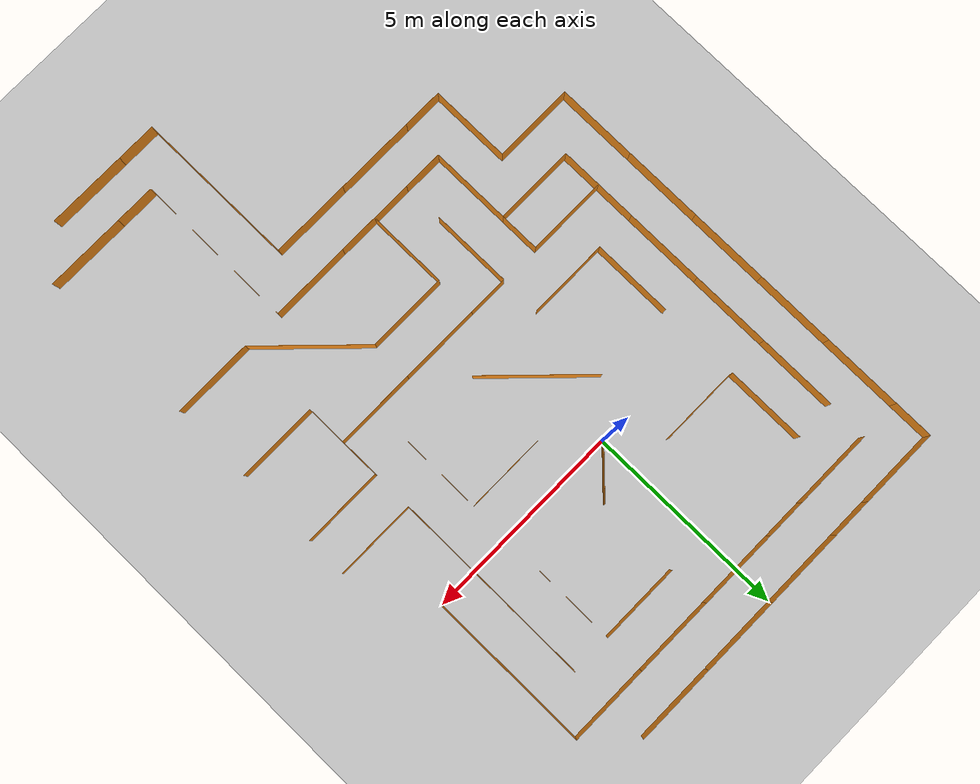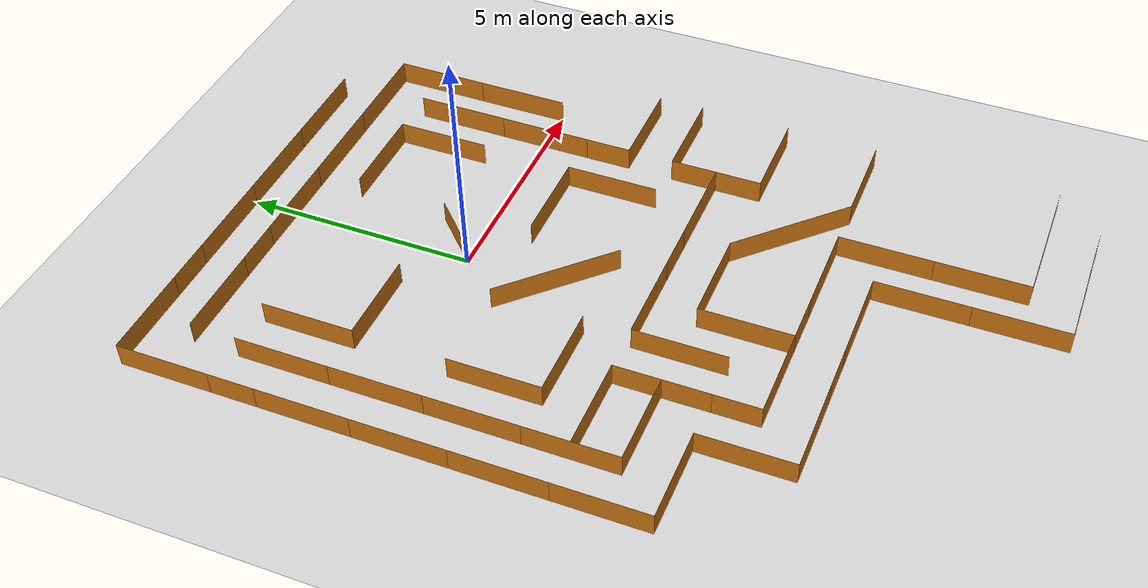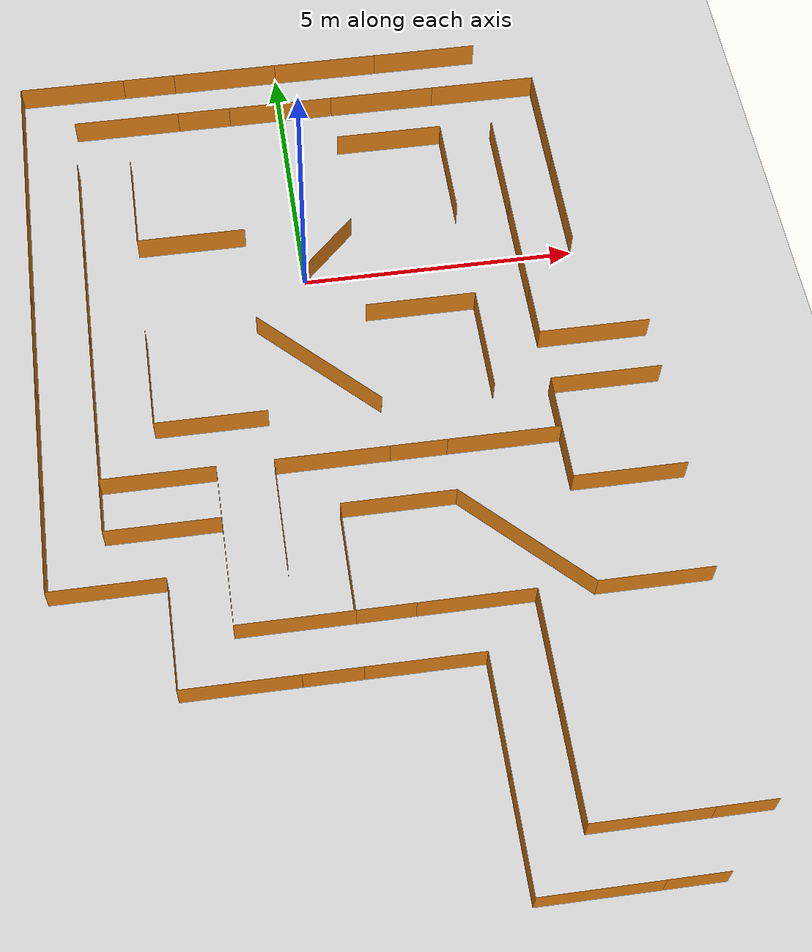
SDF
<sdf version="1.6">
 <world name="default">
  <model name="ground_plane">
   <static>1</static>
   <link name="link">
    <collision name="collision">
     <geometry><plane><normal>0 0 1</normal><size>100 100</size></plane></geometry>
     <surface><friction><ode><mu>100</mu><mu2>50</mu2></ode></friction></surface>
    </collision>
    <visual name="visual">
     <cast_shadows>0</cast_shadows>
     <geometry><plane><normal>0 0 1</normal><size>100 100</size></plane></geometry>
     <material>
      <script><uri>file://media/materials/scripts/gazebo.material</uri><name>Gazebo/Grey</name></script>
     </material>
    </visual>
   </link>
  </model>
  <model name="wall_4">
   <static>1</static>
   <link name="link">
    <collision name="collision"><geometry><box><size>2 0.001 1</size></box></geometry></collision>
    <visual name="visual">
     <geometry><box><size>2 0.001 1</size></box></geometry>
     <material>
      <script><name>Gazebo/Orange</name><uri>file://media/materials/scripts/gazebo.material</uri></script>
     </material>
    </visual>
   </link>
   <pose>-3 -2 0 0 -0 1.5708</pose>
  </model>
  <model name="wall_5">
   <static>1</static>
   <link name="link">
    <collision name="collision"><geometry><box><size>2 0.001 1</size></box></geometry></collision>
    <visual name="visual">
     <geometry><box><size>2 0.001 1</size></box></geometry>
     <material>
      <script><name>Gazebo/Orange</name><uri>file://media/materials/scripts/gazebo.material</uri></script>
     </material>
    </visual>
   </link>
   <pose>-2 -3 0 0 -0 0</pose>
  </model>
  <model name="wall_6">
   <static>1</static>
   <link name="link">
    <collision name="collision"><geometry><box><size>2 0.001 1</size></box></geometry></collision>
    <visual name="visual">
     <geometry><box><size>2 0.001 1</size></box></geometry>
     <material>
      <script><name>Gazebo/Orange</name><uri>file://media/materials/scripts/gazebo.material</uri></script>
     </material>
    </visual>
   </link>
   <pose>3 2 0 0 0 -1.5708</pose>
  </model>
  <model name="wall_7">
   <static>1</static>
   <link name="link">
    <collision name="collision"><geometry><box><size>2 0.001 1</size></box></geometry></collision>
    <visual name="visual">
     <geometry><box><size>2 0.001 1</size></box></geometry>
     <material>
      <script><name>Gazebo/Orange</name><uri>file://media/materials/scripts/gazebo.material</uri></script>
     </material>
    </visual>
   </link>
   <pose>2 3 0 0 0 -3.14159</pose>
  </model>
  <model name="wall_8">
   <static>1</static>
   <link name="link">
    <collision name="collision"><geometry><box><size>2 0.001 1</size></box></geometry></collision>
    <visual name="visual">
     <geometry><box><size>2 0.001 1</size></box></geometry>
     <material>
      <script><name>Gazebo/Orange</name><uri>file://media/materials/scripts/gazebo.material</uri></script>
     </material>
    </visual>
   </link>
   <pose>2 -1 0 0 -0 0</pose>
  </model>
  <model name="wall_9">
   <static>1</static>
   <link name="link">
    <collision name="collision"><geometry><box><size>2 0.001 1</size></box></geometry></collision>
    <visual name="visual">
     <geometry><box><size>2 0.001 1</size></box></geometry>
     <material>
      <script><name>Gazebo/Orange</name><uri>file://media/materials/scripts/gazebo.material</uri></script>
     </material>
    </visual>
   </link>
   <pose>3 -2 0 0 0 -1.5708</pose>
  </model>
  <model name="wall_10">
   <static>1</static>
   <link name="link">
    <collision name="collision"><geometry><box><size>2 0.001 1</size></box></geometry></collision>
    <visual name="visual">
     <geometry><box><size>2 0.001 1</size></box></geometry>
     <material>
      <script><name>Gazebo/Orange</name><uri>file://media/materials/scripts/gazebo.material</uri></script>
     </material>
    </visual>
   </link>
   <pose>-2 1 0 0 0 -3.14159</pose>
  </model>
  <model name="wall_11">
   <static>1</static>
   <link name="link">
    <collision name="collision"><geometry><box><size>2 0.001 1</size></box></geometry></collision>
    <visual name="visual">
     <geometry><box><size>2 0.001 1</size></box></geometry>
     <material>
      <script><name>Gazebo/Orange</name><uri>file://media/materials/scripts/gazebo.material</uri></script>
     </material>
    </visual>
   </link>
   <pose>-3 2 0 0 -0 1.5708</pose>
  </model>
  <model name="wall_12">
   <static>1</static>
   <link name="link">
    <collision name="collision"><geometry><box><size>2.82843 0.001 1</size></box></geometry></collision>
    <visual name="visual">
     <geometry><box><size>2.82843 0.001 1</size></box></geometry>
     <material>
      <script><name>Gazebo/Orange</name><uri>file://media/materials/scripts/gazebo.material</uri></script>
     </material>
    </visual>
   </link>
   <pose>0 -2 0 0 0 -0.785398</pose>
  </model>
  <model name="wall_14">
   <static>1</static>
   <link name="link">
    <collision name="collision"><geometry><box><size>1.41421 0.001 1</size></box></geometry></collision>
    <visual name="visual">
     <geometry><box><size>1.41421 0.001 1</size></box></geometry>
     <material>
      <script><name>Gazebo/Orange</name><uri>file://media/materials/scripts/gazebo.material</uri></script>
     </material>
    </visual>
   </link>
   <pose>0.5 0.5 0 0 -0 0.785398</pose>
  </model>
  <model name="wall_13_clone">
   <static>1</static>
   <link name="link">
    <collision name="collision"><geometry><box><size>2.00836 0.001 1</size></box></geometry></collision>
    <visual name="visual">
     <geometry><box><size>2.00836 0.001 1</size></box></geometry>
     <material>
      <script><name>Gazebo/Orange</name><uri>file://media/materials/scripts/gazebo.material</uri></script>
     </material>
    </visual>
   </link>
   <pose>4 -4 0 0 0 -1.5708</pose>
  </model>
  <model name="wall_13_clone_clone">
   <static>1</static>
   <link name="link">
    <collision name="collision"><geometry><box><size>1.99802 0.001 1</size></box></geometry></collision>
    <visual name="visual">
     <geometry><box><size>1.99802 0.001 1</size></box></geometry>
     <material>
      <script><name>Gazebo/Orange</name><uri>file://media/materials/scripts/gazebo.material</uri></script>
     </material>
    </visual>
   </link>
   <pose>5 -3 0 0 -0 3.14159</pose>
  </model>
  <model name="wall_13_clone_clone_1">
   <static>1</static>
   <link name="link">
    <collision name="collision"><geometry><box><size>2.00836 0.001 1</size></box></geometry></collision>
    <visual name="visual">
     <geometry><box><size>2.00836 0.001 1</size></box></geometry>
     <material>
      <script><name>Gazebo/Orange</name><uri>file://media/materials/scripts/gazebo.material</uri></script>
     </material>
    </visual>
   </link>
   <pose>4.00414 1.99809 0 0 0 -1.5708</pose>
  </model>
  <model name="wall_13_clone_clone_1_clone">
   <static>1</static>
   <link name="link">
    <collision name="collision"><geometry><box><size>2.00836 0.001 1</size></box></geometry></collision>
    <visual name="visual">
     <geometry><box><size>2.00836 0.001 1</size></box></geometry>
     <material>
      <script><name>Gazebo/Orange</name><uri>file://media/materials/scripts/gazebo.material</uri></script>
     </material>
    </visual>
   </link>
   <pose>4 0 0 0 0 -1.5708</pose>
  </model>
  <model name="wall_13_clone_clone_1_clone_0">
   <static>1</static>
   <link name="link">
    <collision name="collision"><geometry><box><size>2.00836 0.001 1</size></box></geometry></collision>
    <visual name="visual">
     <geometry><box><size>2.00836 0.001 1</size></box></geometry>
     <material>
      <script><name>Gazebo/Orange</name><uri>file://media/materials/scripts/gazebo.material</uri></script>
     </material>
    </visual>
   </link>
   <pose>4.00011 -0.995104 0 0 0 -1.5708</pose>
  </model>
  <model name="wall_13_clone_clone_1_clone_1">
   <static>1</static>
   <link name="link">
    <collision name="collision"><geometry><box><size>2.00836 0.001 1</size></box></geometry></collision>
    <visual name="visual">
     <geometry><box><size>2.00836 0.001 1</size></box></geometry>
     <material>
      <script><name>Gazebo/Orange</name><uri>file://media/materials/scripts/gazebo.material</uri></script>
     </material>
    </visual>
   </link>
   <pose>5 -2 0 0 0 -4e-06</pose>
  </model>
  <model name="wall_13_clone_clone_clone">
   <static>1</static>
   <link name="link">
    <collision name="collision"><geometry><box><size>1.99802 0.001 1</size></box></geometry></collision>
    <visual name="visual">
     <geometry><box><size>1.99802 0.001 1</size></box></geometry>
     <material>
      <script><name>Gazebo/Orange</name><uri>file://media/materials/scripts/gazebo.material</uri></script>
     </material>
    </visual>
   </link>
   <pose>-3 -4 0 0 -0 3.14159</pose>
  </model>
  <model name="wall_13_clone_clone_clone_1">
   <static>1</static>
   <link name="link">
    <collision name="collision"><geometry><box><size>1.99802 0.001 1</size></box></geometry></collision>
    <visual name="visual">
     <geometry><box><size>1.99802 0.001 1</size></box></geometry>
     <material>
      <script><name>Gazebo/Orange</name><uri>file://media/materials/scripts/gazebo.material</uri></script>
     </material>
    </visual>
   </link>
   <pose>1 -4 0 0 -0 3.14159</pose>
  </model>
  <model name="wall_13_clone_clone_clone_2">
   <static>1</static>
   <link name="link">
    <collision name="collision"><geometry><box><size>1.99802 0.001 1</size></box></geometry></collision>
    <visual name="visual">
     <geometry><box><size>1.99802 0.001 1</size></box></geometry>
     <material>
      <script><name>Gazebo/Orange</name><uri>file://media/materials/scripts/gazebo.material</uri></script>
     </material>
    </visual>
   </link>
   <pose>3 -4 0 0 -0 3.14159</pose>
  </model>
  <model name="wall_13_clone_clone_1_clone_3_clone">
   <static>1</static>
   <link name="link">
    <collision name="collision"><geometry><box><size>2.00836 0.001 1</size></box></geometry></collision>
    <visual name="visual">
     <geometry><box><size>2.00836 0.001 1</size></box></geometry>
     <material>
      <script><name>Gazebo/Orange</name><uri>file://media/materials/scripts/gazebo.material</uri></script>
     </material>
    </visual>
   </link>
   <pose>-2 -5 0 0 0 -1.5708</pose>
  </model>
  <model name="wall_13_clone_clone_1_clone_3_clone_0">
   <static>1</static>
   <link name="link">
    <collision name="collision"><geometry><box><size>2.00836 0.001 1</size></box></geometry></collision>
    <visual name="visual">
     <geometry><box><size>2.00836 0.001 1</size></box></geometry>
     <material>
      <script><name>Gazebo/Orange</name><uri>file://media/materials/scripts/gazebo.material</uri></script>
     </material>
    </visual>
   </link>
   <pose>-1 -5 0 0 0 -1.5708</pose>
  </model>
  <model name="wall_13_clone_clone_1_clone_1_clone">
   <static>1</static>
   <link name="link">
    <collision name="collision"><geometry><box><size>2.00836 0.001 1</size></box></geometry></collision>
    <visual name="visual">
     <geometry><box><size>2.00836 0.001 1</size></box></geometry>
     <material>
      <script><name>Gazebo/Orange</name><uri>file://media/materials/scripts/gazebo.material</uri></script>
     </material>
    </visual>
   </link>
   <pose>0 -4 0 0 0 -4e-06</pose>
  </model>
  <model name="wall_13_clone_clone_1_clone_1_clone_0">
   <static>1</static>
   <link name="link">
    <collision name="collision"><geometry><box><size>2.00836 0.001 1</size></box></geometry></collision>
    <visual name="visual">
     <geometry><box><size>2.00836 0.001 1</size></box></geometry>
     <material>
      <script><name>Gazebo/Orange</name><uri>file://media/materials/scripts/gazebo.material</uri></script>
     </material>
    </visual>
   </link>
   <pose>-1 -7 0 0 0 -4e-06</pose>
  </model>
  <model name="wall_13_clone_clone_1_clone_0_clone">
   <static>1</static>
   <link name="link">
    <collision name="collision"><geometry><box><size>2.00836 0.001 1</size></box></geometry></collision>
    <visual name="visual">
     <geometry><box><size>2.00836 0.001 1</size></box></geometry>
     <material>
      <script><name>Gazebo/Orange</name><uri>file://media/materials/scripts/gazebo.material</uri></script>
     </material>
    </visual>
   </link>
   <pose>-2 -6 0 0 0 -1.5708</pose>
  </model>
  <model name="wall_13_clone_clone_1_clone_0_clone_0">
   <static>1</static>
   <link name="link">
    <collision name="collision"><geometry><box><size>2.00836 0.001 1</size></box></geometry></collision>
    <visual name="visual">
     <geometry><box><size>2.00836 0.001 1</size></box></geometry>
     <material>
      <script><name>Gazebo/Orange</name><uri>file://media/materials/scripts/gazebo.material</uri></script>
     </material>
    </visual>
   </link>
   <pose>0 -6 0 0 0 -1.5708</pose>
  </model>
  <model name="wall_13_clone_clone_clone_1_clone">
   <static>1</static>
   <link name="link">
    <collision name="collision"><geometry><box><size>1.99802 0.001 1</size></box></geometry></collision>
    <visual name="visual">
     <geometry><box><size>1.99802 0.001 1</size></box></geometry>
     <material>
      <script><name>Gazebo/Orange</name><uri>file://media/materials/scripts/gazebo.material</uri></script>
     </material>
    </visual>
   </link>
   <pose>1 -5 0 0 -0 3.14159</pose>
  </model>
  <model name="wall_13_clone_clone_clone_1_clone_0">
   <static>1</static>
   <link name="link">
    <collision name="collision"><geometry><box><size>2.83181 0.001 1</size></box></geometry></collision>
    <visual name="visual">
     <geometry><box><size>2.83181 0.001 1</size></box></geometry>
     <material>
      <script><name>Gazebo/Orange</name><uri>file://media/materials/scripts/gazebo.material</uri></script>
     </material>
    </visual>
   </link>
   <pose>3 -6 0 0 -0 2.35619</pose>
  </model>
  <model name="wall_13_clone_clone_clone_1_clone_1">
   <static>1</static>
   <link name="link">
    <collision name="collision"><geometry><box><size>1.99802 0.001 1</size></box></geometry></collision>
    <visual name="visual">
     <geometry><box><size>1.99802 0.001 1</size></box></geometry>
     <material>
      <script><name>Gazebo/Orange</name><uri>file://media/materials/scripts/gazebo.material</uri></script>
     </material>
    </visual>
   </link>
   <pose>5 -7 0 0 -0 3.14159</pose>
  </model>
  <model name="wall_13_clone_clone_clone_1_clone_2">
   <static>1</static>
   <link name="link">
    <collision name="collision"><geometry><box><size>1.99802 0.001 1</size></box></geometry></collision>
    <visual name="visual">
     <geometry><box><size>1.99802 0.001 1</size></box></geometry>
     <material>
      <script><name>Gazebo/Orange</name><uri>file://media/materials/scripts/gazebo.material</uri></script>
     </material>
    </visual>
   </link>
   <pose>5 -5 0 0 -0 3.14159</pose>
  </model>
  <model name="wall_13_clone_clone_clone_1_clone_2_clone_0">
   <static>1</static>
   <link name="link">
    <collision name="collision"><geometry><box><size>1.99802 0.001 1</size></box></geometry></collision>
    <visual name="visual">
     <geometry><box><size>1.99802 0.001 1</size></box></geometry>
     <material>
      <script><name>Gazebo/Orange</name><uri>file://media/materials/scripts/gazebo.material</uri></script>
     </material>
    </visual>
   </link>
   <pose>4 -12 0 0 -0 3.14159</pose>
  </model>
  <model name="wall_13_clone_clone_clone_1_clone_2_clone_1">
   <static>1</static>
   <link name="link">
    <collision name="collision"><geometry><box><size>1.99802 0.001 1</size></box></geometry></collision>
    <visual name="visual">
     <geometry><box><size>1.99802 0.001 1</size></box></geometry>
     <material>
      <script><name>Gazebo/Orange</name><uri>file://media/materials/scripts/gazebo.material</uri></script>
     </material>
    </visual>
   </link>
   <pose>5 -11 0 0 -0 3.14159</pose>
  </model>
  <model name="wall_13_clone_clone_clone_1_clone_2_clone_2">
   <static>1</static>
   <link name="link">
    <collision name="collision"><geometry><box><size>1.99802 0.001 1</size></box></geometry></collision>
    <visual name="visual">
     <geometry><box><size>1.99802 0.001 1</size></box></geometry>
     <material>
      <script><name>Gazebo/Orange</name><uri>file://media/materials/scripts/gazebo.material</uri></script>
     </material>
    </visual>
   </link>
   <pose>4 -11 0 0 -0 3.14159</pose>
  </model>
  <model name="wall_13_clone_clone_1_clone_3_clone_1_clone_2_clone">
   <static>1</static>
   <link name="link">
    <collision name="collision"><geometry><box><size>2.00836 0.001 1</size></box></geometry></collision>
    <visual name="visual">
     <geometry><box><size>2.00836 0.001 1</size></box></geometry>
     <material>
      <script><name>Gazebo/Orange</name><uri>file://media/materials/scripts/gazebo.material</uri></script>
     </material>
    </visual>
   </link>
   <pose>3 -10 0 0 0 -1.5708</pose>
  </model>
  <model name="wall_13_clone_clone_1_clone_3_clone_1_clone_2_clone_0">
   <static>1</static>
   <link name="link">
    <collision name="collision"><geometry><box><size>2.00836 0.001 1</size></box></geometry></collision>
    <visual name="visual">
     <geometry><box><size>2.00836 0.001 1</size></box></geometry>
     <material>
      <script><name>Gazebo/Orange</name><uri>file://media/materials/scripts/gazebo.material</uri></script>
     </material>
    </visual>
   </link>
   <pose>3 -8 0 0 0 -1.5708</pose>
  </model>
  <model name="wall_13_clone_clone_1_clone_3_clone_1_clone_2_clone_1">
   <static>1</static>
   <link name="link">
    <collision name="collision"><geometry><box><size>2.00836 0.001 1</size></box></geometry></collision>
    <visual name="visual">
     <geometry><box><size>2.00836 0.001 1</size></box></geometry>
     <material>
      <script><name>Gazebo/Orange</name><uri>file://media/materials/scripts/gazebo.material</uri></script>
     </material>
    </visual>
   </link>
   <pose>2 -11 0 0 0 -1.5708</pose>
  </model>
  <model name="wall_13_clone_clone_1_clone_3_clone_1_clone_2_clone_2">
   <static>1</static>
   <link name="link">
    <collision name="collision"><geometry><box><size>2.00836 0.001 1</size></box></geometry></collision>
    <visual name="visual">
     <geometry><box><size>2.00836 0.001 1</size></box></geometry>
     <material>
      <script><name>Gazebo/Orange</name><uri>file://media/materials/scripts/gazebo.material</uri></script>
     </material>
    </visual>
   </link>
   <pose>2 -9 0 0 0 -1.5708</pose>
  </model>
  <model name="wall_13_clone_clone_clone_1_clone_2_clone_3">
   <static>1</static>
   <link name="link">
    <collision name="collision"><geometry><box><size>1.99802 0.001 1</size></box></geometry></collision>
    <visual name="visual">
     <geometry><box><size>1.99802 0.001 1</size></box></geometry>
     <material>
      <script><name>Gazebo/Orange</name><uri>file://media/materials/scripts/gazebo.material</uri></script>
     </material>
    </visual>
   </link>
   <pose>3 -12 0 0 -0 3.14159</pose>
  </model>
  <model name="wall_13_clone_clone_clone_1_clone_2_clone_4">
   <static>1</static>
   <link name="link">
    <collision name="collision"><geometry><box><size>1.99802 0.001 1</size></box></geometry></collision>
    <visual name="visual">
     <geometry><box><size>1.99802 0.001 1</size></box></geometry>
     <material>
      <script><name>Gazebo/Orange</name><uri>file://media/materials/scripts/gazebo.material</uri></script>
     </material>
    </visual>
   </link>
   <pose>2 -7 0 0 -0 3.14159</pose>
  </model>
  <model name="wall_13_clone_clone_clone_1_clone_2_clone_5">
   <static>1</static>
   <link name="link">
    <collision name="collision"><geometry><box><size>1.99802 0.001 1</size></box></geometry></collision>
    <visual name="visual">
     <geometry><box><size>1.99802 0.001 1</size></box></geometry>
     <material>
      <script><name>Gazebo/Orange</name><uri>file://media/materials/scripts/gazebo.material</uri></script>
     </material>
    </visual>
   </link>
   <pose>0 -7 0 0 -0 3.14159</pose>
  </model>
  <model name="wall_13_clone_clone_clone_1_clone_2_clone_6">
   <static>1</static>
   <link name="link">
    <collision name="collision"><geometry><box><size>1.99802 0.001 1</size></box></geometry></collision>
    <visual name="visual">
     <geometry><box><size>1.99802 0.001 1</size></box></geometry>
     <material>
      <script><name>Gazebo/Orange</name><uri>file://media/materials/scripts/gazebo.material</uri></script>
     </material>
    </visual>
   </link>
   <pose>1 -8 0 0 -0 3.14159</pose>
  </model>
  <model name="wall_13_clone_clone_clone_1_clone_2_clone_7">
   <static>1</static>
   <link name="link">
    <collision name="collision"><geometry><box><size>1.99802 0.001 1</size></box></geometry></collision>
    <visual name="visual">
     <geometry><box><size>1.99802 0.001 1</size></box></geometry>
     <material>
      <script><name>Gazebo/Orange</name><uri>file://media/materials/scripts/gazebo.material</uri></script>
     </material>
    </visual>
   </link>
   <pose>-1 -8 0 0 -0 3.14159</pose>
  </model>
  <model name="wall_13_clone_clone_clone_1_clone_2_clone_8">
   <static>1</static>
   <link name="link">
    <collision name="collision"><geometry><box><size>1.99802 0.001 1</size></box></geometry></collision>
    <visual name="visual">
     <geometry><box><size>1.99802 0.001 1</size></box></geometry>
     <material>
      <script><name>Gazebo/Orange</name><uri>file://media/materials/scripts/gazebo.material</uri></script>
     </material>
    </visual>
   </link>
   <pose>-2 -8 0 0 -0 3.14159</pose>
  </model>
  <model name="wall_13_clone_clone_1_clone_3_clone_1_clone_3_clone_clone">
   <static>1</static>
   <link name="link">
    <collision name="collision"><geometry><box><size>2.00836 0.001 1</size></box></geometry></collision>
    <visual name="visual">
     <geometry><box><size>2.00836 0.001 1</size></box></geometry>
     <material>
      <script><name>Gazebo/Orange</name><uri>file://media/materials/scripts/gazebo.material</uri></script>
     </material>
    </visual>
   </link>
   <pose>-3 -7 0 0 0 -1.5708</pose>
  </model>
  <model name="wall_13_clone_clone_1_clone_3_clone_1_clone_3_clone_clone_0">
   <static>1</static>
   <link name="link">
    <collision name="collision"><geometry><box><size>2.00836 0.001 1</size></box></geometry></collision>
    <visual name="visual">
     <geometry><box><size>2.00836 0.001 1</size></box></geometry>
     <material>
      <script><name>Gazebo/Orange</name><uri>file://media/materials/scripts/gazebo.material</uri></script>
     </material>
    </visual>
   </link>
   <pose>-5 -5 0 0 0 -1.5708</pose>
  </model>
  <model name="wall_13_clone_clone_clone_1_clone_2_clone_9">
   <static>1</static>
   <link name="link">
    <collision name="collision"><geometry><box><size>1.99802 0.001 1</size></box></geometry></collision>
    <visual name="visual">
     <geometry><box><size>1.99802 0.001 1</size></box></geometry>
     <material>
      <script><name>Gazebo/Orange</name><uri>file://media/materials/scripts/gazebo.material</uri></script>
     </material>
    </visual>
   </link>
   <pose>-4 -6 0 0 -0 3.14159</pose>
  </model>
  <model name="wall_13_clone_clone_clone_1_clone_2_clone_10">
   <static>1</static>
   <link name="link">
    <collision name="collision"><geometry><box><size>1.99802 0.001 1</size></box></geometry></collision>
    <visual name="visual">
     <geometry><box><size>1.99802 0.001 1</size></box></geometry>
     <material>
      <script><name>Gazebo/Orange</name><uri>file://media/materials/scripts/gazebo.material</uri></script>
     </material>
    </visual>
   </link>
   <pose>-3 -5 0 0 -0 3.14159</pose>
  </model>
  <model name="wall_13_clone_clone_1_clone_3_clone_1_clone_1_clone_clone">
   <static>1</static>
   <link name="link">
    <collision name="collision"><geometry><box><size>2.00836 0.001 1</size></box></geometry></collision>
    <visual name="visual">
     <geometry><box><size>2.00836 0.001 1</size></box></geometry>
     <material>
      <script><name>Gazebo/Orange</name><uri>file://media/materials/scripts/gazebo.material</uri></script>
     </material>
    </visual>
   </link>
   <pose>-5 -3 0 0 0 -1.5708</pose>
  </model>
  <model name="wall_13_clone_clone_1_clone_3_clone_1_clone_1_clone_clone_0">
   <static>1</static>
   <link name="link">
    <collision name="collision"><geometry><box><size>2.00836 0.001 1</size></box></geometry></collision>
    <visual name="visual">
     <geometry><box><size>2.00836 0.001 1</size></box></geometry>
     <material>
      <script><name>Gazebo/Orange</name><uri>file://media/materials/scripts/gazebo.material</uri></script>
     </material>
    </visual>
   </link>
   <pose>-5 -1 0 0 0 -1.5708</pose>
  </model>
  <model name="wall_13_clone_clone_1_clone_3_clone_1_clone_1_clone_clone_1">
   <static>1</static>
   <link name="link">
    <collision name="collision"><geometry><box><size>2.00836 0.001 1</size></box></geometry></collision>
    <visual name="visual">
     <geometry><box><size>2.00836 0.001 1</size></box></geometry>
     <material>
      <script><name>Gazebo/Orange</name><uri>file://media/materials/scripts/gazebo.material</uri></script>
     </material>
    </visual>
   </link>
   <pose>-5 1 0 0 0 -1.5708</pose>
  </model>
  <model name="wall_13_clone_clone_1_clone_3_clone_1_clone_1_clone_clone_2">
   <static>1</static>
   <link name="link">
    <collision name="collision"><geometry><box><size>2.00836 0.001 1</size></box></geometry></collision>
    <visual name="visual">
     <geometry><box><size>2.00836 0.001 1</size></box></geometry>
     <material>
      <script><name>Gazebo/Orange</name><uri>file://media/materials/scripts/gazebo.material</uri></script>
     </material>
    </visual>
   </link>
   <pose>-5 3 0 0 0 -1.5708</pose>
  </model>
  <model name="wall_13_clone_clone_1_clone_3_clone_1_clone_1_clone_clone_3">
   <static>1</static>
   <link name="link">
    <collision name="collision"><geometry><box><size>2.00836 0.001 1</size></box></geometry></collision>
    <visual name="visual">
     <geometry><box><size>2.00836 0.001 1</size></box></geometry>
     <material>
      <script><name>Gazebo/Orange</name><uri>file://media/materials/scripts/gazebo.material</uri></script>
     </material>
    </visual>
   </link>
   <pose>-4 -4 0 0 0 -1.5708</pose>
  </model>
  <model name="wall_13_clone_clone_1_clone_3_clone_1_clone_1_clone_clone_4">
   <static>1</static>
   <link name="link">
    <collision name="collision"><geometry><box><size>2.00836 0.001 1</size></box></geometry></collision>
    <visual name="visual">
     <geometry><box><size>2.00836 0.001 1</size></box></geometry>
     <material>
      <script><name>Gazebo/Orange</name><uri>file://media/materials/scripts/gazebo.material</uri></script>
     </material>
    </visual>
   </link>
   <pose>-4 -2 0 0 0 -1.5708</pose>
  </model>
  <model name="wall_13_clone_clone_1_clone_3_clone_1_clone_1_clone_clone_5">
   <static>1</static>
   <link name="link">
    <collision name="collision"><geometry><box><size>2.00836 0.001 1</size></box></geometry></collision>
    <visual name="visual">
     <geometry><box><size>2.00836 0.001 1</size></box></geometry>
     <material>
      <script><name>Gazebo/Orange</name><uri>file://media/materials/scripts/gazebo.material</uri></script>
     </material>
    </visual>
   </link>
   <pose>-4 0 0 0 0 -1.5708</pose>
  </model>
  <model name="wall_13_clone_clone_1_clone_3_clone_1_clone_1_clone_clone_6">
   <static>1</static>
   <link name="link">
    <collision name="collision"><geometry><box><size>2.00836 0.001 1</size></box></geometry></collision>
    <visual name="visual">
     <geometry><box><size>2.00836 0.001 1</size></box></geometry>
     <material>
      <script><name>Gazebo/Orange</name><uri>file://media/materials/scripts/gazebo.material</uri></script>
     </material>
    </visual>
   </link>
   <pose>-4 2 0 0 0 -1.5708</pose>
  </model>
  <model name="wall_13_clone_clone_1_clone_3_clone_1_clone_1_clone_clone_7">
   <static>1</static>
   <link name="link">
    <collision name="collision"><geometry><box><size>2.00836 0.001 1</size></box></geometry></collision>
    <visual name="visual">
     <geometry><box><size>2.00836 0.001 1</size></box></geometry>
     <material>
      <script><name>Gazebo/Orange</name><uri>file://media/materials/scripts/gazebo.material</uri></script>
     </material>
    </visual>
   </link>
   <pose>5 3 0 0 0 -1.5708</pose>
  </model>
  <model name="wall_13_clone_clone_1_clone_3_clone_1_clone_1_clone_clone_8">
   <static>1</static>
   <link name="link">
    <collision name="collision"><geometry><box><size>2.00836 0.001 1</size></box></geometry></collision>
    <visual name="visual">
     <geometry><box><size>2.00836 0.001 1</size></box></geometry>
     <material>
      <script><name>Gazebo/Orange</name><uri>file://media/materials/scripts/gazebo.material</uri></script>
     </material>
    </visual>
   </link>
   <pose>5 1 0 0 0 -1.5708</pose>
  </model>
  <model name="wall_13_clone_clone_clone_1_clone_1_clone_2_clone_4">
   <static>1</static>
   <link name="link">
    <collision name="collision"><geometry><box><size>1.99802 0.001 1</size></box></geometry></collision>
    <visual name="visual">
     <geometry><box><size>1.99802 0.001 1</size></box></geometry>
     <material>
      <script><name>Gazebo/Orange</name><uri>file://media/materials/scripts/gazebo.material</uri></script>
     </material>
    </visual>
   </link>
   <pose>3 5 0 0 -0 3.14159</pose>
  </model>
  <model name="wall_13_clone_clone_clone_1_clone_1_clone_2_clone_5">
   <static>1</static>
   <link name="link">
    <collision name="collision"><geometry><box><size>1.99802 0.001 1</size></box></geometry></collision>
    <visual name="visual">
     <geometry><box><size>1.99802 0.001 1</size></box></geometry>
     <material>
      <script><name>Gazebo/Orange</name><uri>file://media/materials/scripts/gazebo.material</uri></script>
     </material>
    </visual>
   </link>
   <pose>1 5 0 0 -0 3.14159</pose>
  </model>
  <model name="wall_13_clone_clone_clone_1_clone_1_clone_2_clone_6">
   <static>1</static>
   <link name="link">
    <collision name="collision"><geometry><box><size>1.99802 0.001 1</size></box></geometry></collision>
    <visual name="visual">
     <geometry><box><size>1.99802 0.001 1</size></box></geometry>
     <material>
      <script><name>Gazebo/Orange</name><uri>file://media/materials/scripts/gazebo.material</uri></script>
     </material>
    </visual>
   </link>
   <pose>-1 5 0 0 -0 3.14159</pose>
  </model>
  <model name="wall_13_clone_clone_clone_1_clone_1_clone_2_clone_7">
   <static>1</static>
   <link name="link">
    <collision name="collision"><geometry><box><size>1.99802 0.001 1</size></box></geometry></collision>
    <visual name="visual">
     <geometry><box><size>1.99802 0.001 1</size></box></geometry>
     <material>
      <script><name>Gazebo/Orange</name><uri>file://media/materials/scripts/gazebo.material</uri></script>
     </material>
    </visual>
   </link>
   <pose>-3 5 0 0 -0 3.14159</pose>
  </model>
  <model name="wall_13_clone_clone_clone_1_clone_1_clone_2_clone_8">
   <static>1</static>
   <link name="link">
    <collision name="collision"><geometry><box><size>1.99802 0.001 1</size></box></geometry></collision>
    <visual name="visual">
     <geometry><box><size>1.99802 0.001 1</size></box></geometry>
     <material>
      <script><name>Gazebo/Orange</name><uri>file://media/materials/scripts/gazebo.material</uri></script>
     </material>
    </visual>
   </link>
   <pose>-4 5 0 0 -0 3.14159</pose>
  </model>
  <model name="wall_13_clone_clone_1_clone_3_clone_1_clone_1_clone_clone_7_clone">
   <static>1</static>
   <link name="link">
    <collision name="collision"><geometry><box><size>2.00836 0.001 1</size></box></geometry></collision>
    <visual name="visual">
     <geometry><box><size>2.00836 0.001 1</size></box></geometry>
     <material>
      <script><name>Gazebo/Orange</name><uri>file://media/materials/scripts/gazebo.material</uri></script>
     </material>
    </visual>
   </link>
   <pose>-5 4 0 0 0 -1.5708</pose>
  </model>
  <model name="wall_13_clone_clone_clone_1_clone_1_clone_2_clone_9">
   <static>1</static>
   <link name="link">
    <collision name="collision"><geometry><box><size>1.99802 0.001 1</size></box></geometry></collision>
    <visual name="visual">
     <geometry><box><size>1.99802 0.001 1</size></box></geometry>
     <material>
      <script><name>Gazebo/Orange</name><uri>file://media/materials/scripts/gazebo.material</uri></script>
     </material>
    </visual>
   </link>
   <pose>4 4 0 0 -0 3.14159</pose>
  </model>
  <model name="wall_13_clone_clone_clone_1_clone_1_clone_2_clone_10">
   <static>1</static>
   <link name="link">
    <collision name="collision"><geometry><box><size>1.99802 0.001 1</size></box></geometry></collision>
    <visual name="visual">
     <geometry><box><size>1.99802 0.001 1</size></box></geometry>
     <material>
      <script><name>Gazebo/Orange</name><uri>file://media/materials/scripts/gazebo.material</uri></script>
     </material>
    </visual>
   </link>
   <pose>2 4 0 0 -0 3.14159</pose>
  </model>
  <model name="wall_13_clone_clone_clone_1_clone_1_clone_2_clone_11">
   <static>1</static>
   <link name="link">
    <collision name="collision"><geometry><box><size>1.99802 0.001 1</size></box></geometry></collision>
    <visual name="visual">
     <geometry><box><size>1.99802 0.001 1</size></box></geometry>
     <material>
      <script><name>Gazebo/Orange</name><uri>file://media/materials/scripts/gazebo.material</uri></script>
     </material>
    </visual>
   </link>
   <pose>0 4 0 0 -0 3.14159</pose>
  </model>
  <model name="wall_13_clone_clone_clone_1_clone_1_clone_2_clone_12">
   <static>1</static>
   <link name="link">
    <collision name="collision"><geometry><box><size>1.99802 0.001 1</size></box></geometry></collision>
    <visual name="visual">
     <geometry><box><size>1.99802 0.001 1</size></box></geometry>
     <material>
      <script><name>Gazebo/Orange</name><uri>file://media/materials/scripts/gazebo.material</uri></script>
     </material>
    </visual>
   </link>
   <pose>-2 4 0 0 -0 3.14159</pose>
  </model>
  <model name="wall_13_clone_clone_clone_1_clone_1_clone_2_clone_13">
   <static>1</static>
   <link name="link">
    <collision name="collision"><geometry><box><size>1.99802 0.001 1</size></box></geometry></collision>
    <visual name="visual">
     <geometry><box><size>1.99802 0.001 1</size></box></geometry>
     <material>
      <script><name>Gazebo/Orange</name><uri>file://media/materials/scripts/gazebo.material</uri></script>
     </material>
    </visual>
   </link>
   <pose>-3 4 0 0 -0 3.14159</pose>
  </model>
 </world>
</sdf>
